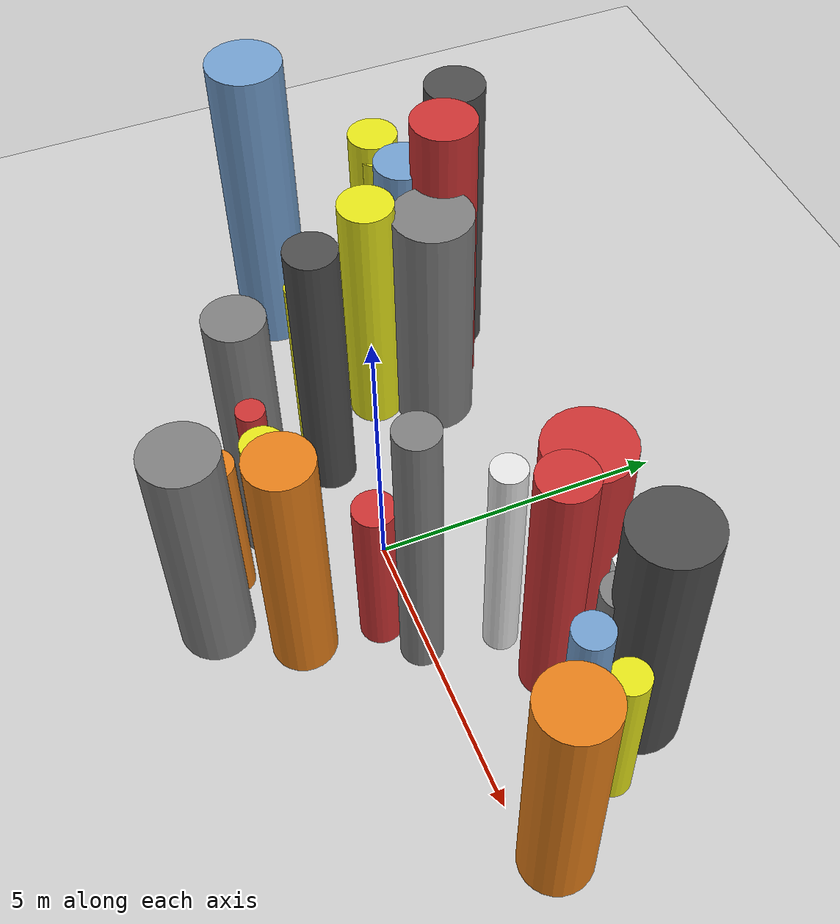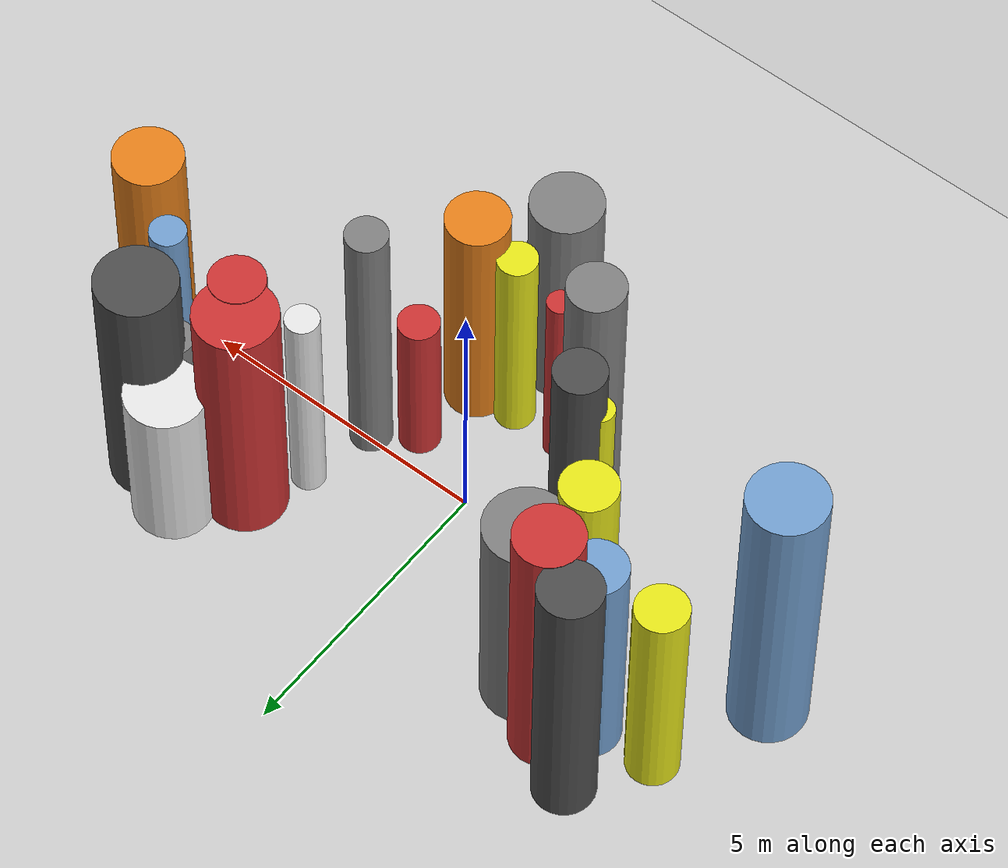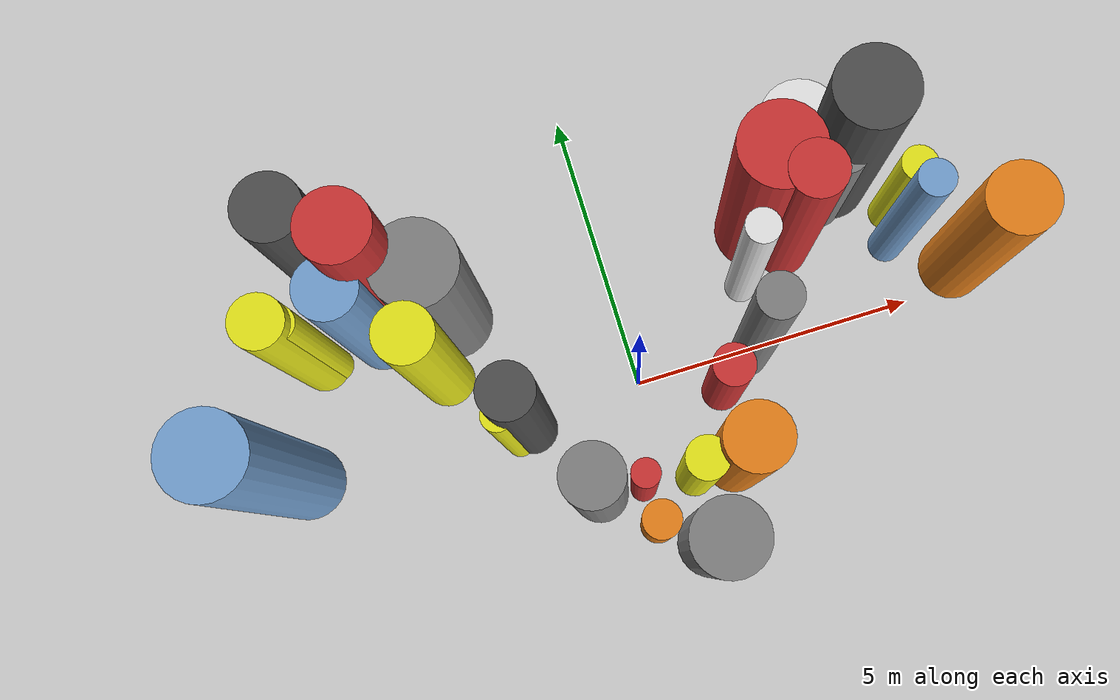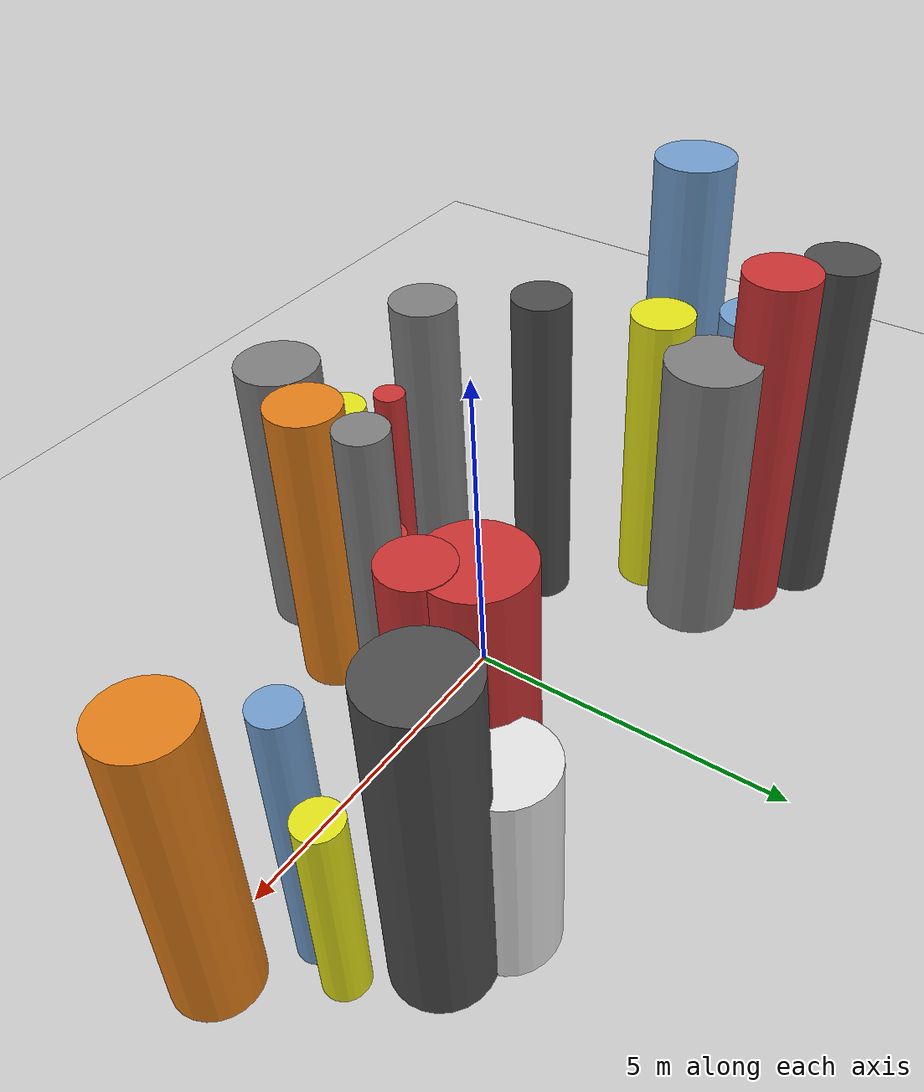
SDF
<?xml version='1.0'?>
<sdf version='1.6'>
  <world name='routeA_rl_v1__dense_recovery__rl_test__s_turn_multi_obstacle__000048'>
    <!-- Sun light -->
    <light name='sun' type='directional'>
      <cast_shadows>1</cast_shadows>
      <pose>0 0 10 0 0 0</pose>
      <diffuse>0.8 0.8 0.8 1</diffuse>
      <specular>0.2 0.2 0.2 1</specular>
      <attenuation>
        <range>1000</range>
        <constant>0.9</constant>
        <linear>0.01</linear>
        <quadratic>0.001</quadratic>
      </attenuation>
      <direction>-0.5 0.1 -0.9</direction>
    </light>

    <!-- Ground plane -->
    <model name='ground_plane'>
      <static>1</static>
      <link name='link'>
        <collision name='collision'>
          <geometry>
            <plane>
              <normal>0 0 1</normal>
              <size>100 100</size>
            </plane>
          </geometry>
          <surface>
            <contact>
              <collide_bitmask>65535</collide_bitmask>
              <ode/>
            </contact>
            <friction>
              <ode>
                <mu>100</mu>
                <mu2>50</mu2>
              </ode>
              <torsional><ode/></torsional>
            </friction>
            <bounce/>
          </surface>
          <max_contacts>10</max_contacts>
        </collision>
        <visual name='visual'>
          <cast_shadows>0</cast_shadows>
          <geometry>
            <plane>
              <normal>0 0 1</normal>
              <size>100 100</size>
            </plane>
          </geometry>
          <material>
            <script>
              <uri>file://media/materials/scripts/gazebo.material</uri>
              <n>Gazebo/Grey</n>
            </script>
          </material>
        </visual>
      </link>
    </model>

    <!-- Environment -->
    <magnetic_field>6e-06 2.3e-05 -4.2e-05</magnetic_field>
    <atmosphere type='adiabatic'/>
    <physics name='default_physics' default='0' type='ode'>
      <gravity>0 0 -9.8</gravity>
      <max_step_size>0.004</max_step_size>
      <real_time_factor>1</real_time_factor>
      <real_time_update_rate>250</real_time_update_rate>
    </physics>
    <scene>
      <ambient>0.4 0.4 0.4 1</ambient>
      <background>0.7 0.7 0.7 1</background>
      <shadows>1</shadows>
    </scene>
    <wind/>
    <spherical_coordinates>
      <surface_model>EARTH_WGS84</surface_model>
      <latitude_deg>0</latitude_deg>
      <longitude_deg>0</longitude_deg>
      <elevation>0</elevation>
      <heading_deg>0</heading_deg>
    </spherical_coordinates>

    <!-- ============ OBSTACLES (28) ============ -->
    <model name='s_turn_obs_0'>
      <static>1</static>
      <link name='link'>
        <visual name='visual'>
          <geometry>
            <cylinder>
              <radius>0.6467</radius>
              <length>5.8647</length>
            </cylinder>
          </geometry>
          <material>
            <script>
              <n>Gazebo/Blue</n>
              <uri>file://media/materials/scripts/gazebo.material</uri>
            </script>
            <ambient>0.447 0.624 0.812 1</ambient>
          </material>
        </visual>
        <collision name='collision'>
          <geometry>
            <cylinder>
              <radius>0.6467</radius>
              <length>5.8647</length>
            </cylinder>
          </geometry>
          <max_contacts>10</max_contacts>
          <surface>
            <contact><ode/></contact>
            <bounce/>
            <friction>
              <ode><mu>1</mu><mu2>1</mu2></ode>
              <torsional><ode/></torsional>
            </friction>
          </surface>
        </collision>
      </link>
      <pose>-6.0000 0.0450 2.9323 0 0 0.0000</pose>
    </model>

    <model name='s_turn_obs_1'>
      <static>1</static>
      <link name='link'>
        <visual name='visual'>
          <geometry>
            <cylinder>
              <radius>0.4315</radius>
              <length>4.4389</length>
            </cylinder>
          </geometry>
          <material>
            <script>
              <n>Gazebo/Yellow</n>
              <uri>file://media/materials/scripts/gazebo.material</uri>
            </script>
            <ambient>0.9 0.9 0.1 1</ambient>
          </material>
        </visual>
        <collision name='collision'>
          <geometry>
            <cylinder>
              <radius>0.4315</radius>
              <length>4.4389</length>
            </cylinder>
          </geometry>
          <max_contacts>10</max_contacts>
          <surface>
            <contact><ode/></contact>
            <bounce/>
            <friction>
              <ode><mu>1</mu><mu2>1</mu2></ode>
              <torsional><ode/></torsional>
            </friction>
          </surface>
        </collision>
      </link>
      <pose>-5.2000 1.9327 2.2194 0 0 0.0000</pose>
    </model>

    <model name='s_turn_obs_2'>
      <static>1</static>
      <link name='link'>
        <visual name='visual'>
          <geometry>
            <cylinder>
              <radius>0.5156</radius>
              <length>5.6516</length>
            </cylinder>
          </geometry>
          <material>
            <script>
              <n>Gazebo/DarkGrey</n>
              <uri>file://media/materials/scripts/gazebo.material</uri>
            </script>
            <ambient>0.3 0.3 0.3 1</ambient>
          </material>
        </visual>
        <collision name='collision'>
          <geometry>
            <cylinder>
              <radius>0.5156</radius>
              <length>5.6516</length>
            </cylinder>
          </geometry>
          <max_contacts>10</max_contacts>
          <surface>
            <contact><ode/></contact>
            <bounce/>
            <friction>
              <ode><mu>1</mu><mu2>1</mu2></ode>
              <torsional><ode/></torsional>
            </friction>
          </surface>
        </collision>
      </link>
      <pose>-4.4000 3.1192 2.8258 0 0 0.0000</pose>
    </model>

    <model name='s_turn_obs_3'>
      <static>1</static>
      <link name='link'>
        <visual name='visual'>
          <geometry>
            <cylinder>
              <radius>0.5625</radius>
              <length>5.6630</length>
            </cylinder>
          </geometry>
          <material>
            <script>
              <n>Gazebo/Red</n>
              <uri>file://media/materials/scripts/gazebo.material</uri>
            </script>
            <ambient>0.8 0.2 0.2 1</ambient>
          </material>
        </visual>
        <collision name='collision'>
          <geometry>
            <cylinder>
              <radius>0.5625</radius>
              <length>5.6630</length>
            </cylinder>
          </geometry>
          <max_contacts>10</max_contacts>
          <surface>
            <contact><ode/></contact>
            <bounce/>
            <friction>
              <ode><mu>1</mu><mu2>1</mu2></ode>
              <torsional><ode/></torsional>
            </friction>
          </surface>
        </collision>
      </link>
      <pose>-3.6000 2.5980 2.8315 0 0 0.0000</pose>
    </model>

    <model name='s_turn_obs_4'>
      <static>1</static>
      <link name='link'>
        <visual name='visual'>
          <geometry>
            <cylinder>
              <radius>0.6942</radius>
              <length>4.5153</length>
            </cylinder>
          </geometry>
          <material>
            <script>
              <n>Gazebo/Grey</n>
              <uri>file://media/materials/scripts/gazebo.material</uri>
            </script>
            <ambient>0.5 0.5 0.5 1</ambient>
          </material>
        </visual>
        <collision name='collision'>
          <geometry>
            <cylinder>
              <radius>0.6942</radius>
              <length>4.5153</length>
            </cylinder>
          </geometry>
          <max_contacts>10</max_contacts>
          <surface>
            <contact><ode/></contact>
            <bounce/>
            <friction>
              <ode><mu>1</mu><mu2>1</mu2></ode>
              <torsional><ode/></torsional>
            </friction>
          </surface>
        </collision>
      </link>
      <pose>-2.8000 2.0712 2.2576 0 0 0.0000</pose>
    </model>

    <model name='s_turn_obs_5'>
      <static>1</static>
      <link name='link'>
        <visual name='visual'>
          <geometry>
            <cylinder>
              <radius>0.4309</radius>
              <length>5.2096</length>
            </cylinder>
          </geometry>
          <material>
            <script>
              <n>Gazebo/DarkGrey</n>
              <uri>file://media/materials/scripts/gazebo.material</uri>
            </script>
            <ambient>0.3 0.3 0.3 1</ambient>
          </material>
        </visual>
        <collision name='collision'>
          <geometry>
            <cylinder>
              <radius>0.4309</radius>
              <length>5.2096</length>
            </cylinder>
          </geometry>
          <max_contacts>10</max_contacts>
          <surface>
            <contact><ode/></contact>
            <bounce/>
            <friction>
              <ode><mu>1</mu><mu2>1</mu2></ode>
              <torsional><ode/></torsional>
            </friction>
          </surface>
        </collision>
      </link>
      <pose>-2.0000 -0.2230 2.6048 0 0 0.0000</pose>
    </model>

    <model name='s_turn_obs_6'>
      <static>1</static>
      <link name='link'>
        <visual name='visual'>
          <geometry>
            <cylinder>
              <radius>0.4813</radius>
              <length>5.0882</length>
            </cylinder>
          </geometry>
          <material>
            <script>
              <n>Gazebo/Grey</n>
              <uri>file://media/materials/scripts/gazebo.material</uri>
            </script>
            <ambient>0.5 0.5 0.5 1</ambient>
          </material>
        </visual>
        <collision name='collision'>
          <geometry>
            <cylinder>
              <radius>0.4813</radius>
              <length>5.0882</length>
            </cylinder>
          </geometry>
          <max_contacts>10</max_contacts>
          <surface>
            <contact><ode/></contact>
            <bounce/>
            <friction>
              <ode><mu>1</mu><mu2>1</mu2></ode>
              <torsional><ode/></torsional>
            </friction>
          </surface>
        </collision>
      </link>
      <pose>-1.2000 -1.6684 2.5441 0 0 0.0000</pose>
    </model>

    <model name='s_turn_obs_7'>
      <static>1</static>
      <link name='link'>
        <visual name='visual'>
          <geometry>
            <cylinder>
              <radius>0.3124</radius>
              <length>3.0313</length>
            </cylinder>
          </geometry>
          <material>
            <script>
              <n>Gazebo/Orange</n>
              <uri>file://media/materials/scripts/gazebo.material</uri>
            </script>
            <ambient>0.9 0.5 0.1 1</ambient>
          </material>
        </visual>
        <collision name='collision'>
          <geometry>
            <cylinder>
              <radius>0.3124</radius>
              <length>3.0313</length>
            </cylinder>
          </geometry>
          <max_contacts>10</max_contacts>
          <surface>
            <contact><ode/></contact>
            <bounce/>
            <friction>
              <ode><mu>1</mu><mu2>1</mu2></ode>
              <torsional><ode/></torsional>
            </friction>
          </surface>
        </collision>
      </link>
      <pose>-0.4000 -2.4632 1.5156 0 0 0.0000</pose>
    </model>

    <model name='s_turn_obs_8'>
      <static>1</static>
      <link name='link'>
        <visual name='visual'>
          <geometry>
            <cylinder>
              <radius>0.6023</radius>
              <length>4.4514</length>
            </cylinder>
          </geometry>
          <material>
            <script>
              <n>Gazebo/Grey</n>
              <uri>file://media/materials/scripts/gazebo.material</uri>
            </script>
            <ambient>0.5 0.5 0.5 1</ambient>
          </material>
        </visual>
        <collision name='collision'>
          <geometry>
            <cylinder>
              <radius>0.6023</radius>
              <length>4.4514</length>
            </cylinder>
          </geometry>
          <max_contacts>10</max_contacts>
          <surface>
            <contact><ode/></contact>
            <bounce/>
            <friction>
              <ode><mu>1</mu><mu2>1</mu2></ode>
              <torsional><ode/></torsional>
            </friction>
          </surface>
        </collision>
      </link>
      <pose>0.4000 -3.0222 2.2257 0 0 0.0000</pose>
    </model>

    <model name='s_turn_obs_9'>
      <static>1</static>
      <link name='link'>
        <visual name='visual'>
          <geometry>
            <cylinder>
              <radius>0.5290</radius>
              <length>4.6493</length>
            </cylinder>
          </geometry>
          <material>
            <script>
              <n>Gazebo/Orange</n>
              <uri>file://media/materials/scripts/gazebo.material</uri>
            </script>
            <ambient>0.9 0.5 0.1 1</ambient>
          </material>
        </visual>
        <collision name='collision'>
          <geometry>
            <cylinder>
              <radius>0.5290</radius>
              <length>4.6493</length>
            </cylinder>
          </geometry>
          <max_contacts>10</max_contacts>
          <surface>
            <contact><ode/></contact>
            <bounce/>
            <friction>
              <ode><mu>1</mu><mu2>1</mu2></ode>
              <torsional><ode/></torsional>
            </friction>
          </surface>
        </collision>
      </link>
      <pose>1.2000 -1.8117 2.3246 0 0 0.0000</pose>
    </model>

    <model name='s_turn_obs_10'>
      <static>1</static>
      <link name='link'>
        <visual name='visual'>
          <geometry>
            <cylinder>
              <radius>0.3495</radius>
              <length>5.3812</length>
            </cylinder>
          </geometry>
          <material>
            <script>
              <n>Gazebo/Grey</n>
              <uri>file://media/materials/scripts/gazebo.material</uri>
            </script>
            <ambient>0.5 0.5 0.5 1</ambient>
          </material>
        </visual>
        <collision name='collision'>
          <geometry>
            <cylinder>
              <radius>0.3495</radius>
              <length>5.3812</length>
            </cylinder>
          </geometry>
          <max_contacts>10</max_contacts>
          <surface>
            <contact><ode/></contact>
            <bounce/>
            <friction>
              <ode><mu>1</mu><mu2>1</mu2></ode>
              <torsional><ode/></torsional>
            </friction>
          </surface>
        </collision>
      </link>
      <pose>2.0000 -0.1018 2.6906 0 0 0.0000</pose>
    </model>

    <model name='s_turn_obs_11'>
      <static>1</static>
      <link name='link'>
        <visual name='visual'>
          <geometry>
            <cylinder>
              <radius>0.6840</radius>
              <length>4.9861</length>
            </cylinder>
          </geometry>
          <material>
            <script>
              <n>Gazebo/Red</n>
              <uri>file://media/materials/scripts/gazebo.material</uri>
            </script>
            <ambient>0.8 0.2 0.2 1</ambient>
          </material>
        </visual>
        <collision name='collision'>
          <geometry>
            <cylinder>
              <radius>0.6840</radius>
              <length>4.9861</length>
            </cylinder>
          </geometry>
          <max_contacts>10</max_contacts>
          <surface>
            <contact><ode/></contact>
            <bounce/>
            <friction>
              <ode><mu>1</mu><mu2>1</mu2></ode>
              <torsional><ode/></torsional>
            </friction>
          </surface>
        </collision>
      </link>
      <pose>2.8000 2.0577 2.4931 0 0 0.0000</pose>
    </model>

    <model name='s_turn_obs_12'>
      <static>1</static>
      <link name='link'>
        <visual name='visual'>
          <geometry>
            <cylinder>
              <radius>0.6680</radius>
              <length>3.1137</length>
            </cylinder>
          </geometry>
          <material>
            <script>
              <n>Gazebo/White</n>
              <uri>file://media/materials/scripts/gazebo.material</uri>
            </script>
            <ambient>0.9 0.9 0.9 1</ambient>
          </material>
        </visual>
        <collision name='collision'>
          <geometry>
            <cylinder>
              <radius>0.6680</radius>
              <length>3.1137</length>
            </cylinder>
          </geometry>
          <max_contacts>10</max_contacts>
          <surface>
            <contact><ode/></contact>
            <bounce/>
            <friction>
              <ode><mu>1</mu><mu2>1</mu2></ode>
              <torsional><ode/></torsional>
            </friction>
          </surface>
        </collision>
      </link>
      <pose>3.6000 2.8931 1.5569 0 0 0.0000</pose>
    </model>

    <model name='s_turn_obs_13'>
      <static>1</static>
      <link name='link'>
        <visual name='visual'>
          <geometry>
            <cylinder>
              <radius>0.6736</radius>
              <length>4.9242</length>
            </cylinder>
          </geometry>
          <material>
            <script>
              <n>Gazebo/DarkGrey</n>
              <uri>file://media/materials/scripts/gazebo.material</uri>
            </script>
            <ambient>0.3 0.3 0.3 1</ambient>
          </material>
        </visual>
        <collision name='collision'>
          <geometry>
            <cylinder>
              <radius>0.6736</radius>
              <length>4.9242</length>
            </cylinder>
          </geometry>
          <max_contacts>10</max_contacts>
          <surface>
            <contact><ode/></contact>
            <bounce/>
            <friction>
              <ode><mu>1</mu><mu2>1</mu2></ode>
              <torsional><ode/></torsional>
            </friction>
          </surface>
        </collision>
      </link>
      <pose>4.4000 2.4979 2.4621 0 0 0.0000</pose>
    </model>

    <model name='s_turn_obs_14'>
      <static>1</static>
      <link name='link'>
        <visual name='visual'>
          <geometry>
            <cylinder>
              <radius>0.3042</radius>
              <length>3.0080</length>
            </cylinder>
          </geometry>
          <material>
            <script>
              <n>Gazebo/Yellow</n>
              <uri>file://media/materials/scripts/gazebo.material</uri>
            </script>
            <ambient>0.9 0.9 0.1 1</ambient>
          </material>
        </visual>
        <collision name='collision'>
          <geometry>
            <cylinder>
              <radius>0.3042</radius>
              <length>3.0080</length>
            </cylinder>
          </geometry>
          <max_contacts>10</max_contacts>
          <surface>
            <contact><ode/></contact>
            <bounce/>
            <friction>
              <ode><mu>1</mu><mu2>1</mu2></ode>
              <torsional><ode/></torsional>
            </friction>
          </surface>
        </collision>
      </link>
      <pose>5.2000 1.6612 1.5040 0 0 0.0000</pose>
    </model>

    <model name='s_turn_obs_15'>
      <static>1</static>
      <link name='link'>
        <visual name='visual'>
          <geometry>
            <cylinder>
              <radius>0.5792</radius>
              <length>4.5330</length>
            </cylinder>
          </geometry>
          <material>
            <script>
              <n>Gazebo/Orange</n>
              <uri>file://media/materials/scripts/gazebo.material</uri>
            </script>
            <ambient>0.9 0.5 0.1 1</ambient>
          </material>
        </visual>
        <collision name='collision'>
          <geometry>
            <cylinder>
              <radius>0.5792</radius>
              <length>4.5330</length>
            </cylinder>
          </geometry>
          <max_contacts>10</max_contacts>
          <surface>
            <contact><ode/></contact>
            <bounce/>
            <friction>
              <ode><mu>1</mu><mu2>1</mu2></ode>
              <torsional><ode/></torsional>
            </friction>
          </surface>
        </collision>
      </link>
      <pose>6.0000 0.3653 2.2665 0 0 0.0000</pose>
    </model>

    <model name='s_turn_obs2_0'>
      <static>1</static>
      <link name='link'>
        <visual name='visual'>
          <geometry>
            <cylinder>
              <radius>0.2936</radius>
              <length>4.1265</length>
            </cylinder>
          </geometry>
          <material>
            <script>
              <n>Gazebo/Yellow</n>
              <uri>file://media/materials/scripts/gazebo.material</uri>
            </script>
            <ambient>0.9 0.9 0.1 1</ambient>
          </material>
        </visual>
        <collision name='collision'>
          <geometry>
            <cylinder>
              <radius>0.2936</radius>
              <length>4.1265</length>
            </cylinder>
          </geometry>
          <max_contacts>10</max_contacts>
          <surface>
            <contact><ode/></contact>
            <bounce/>
            <friction>
              <ode><mu>1</mu><mu2>1</mu2></ode>
              <torsional><ode/></torsional>
            </friction>
          </surface>
        </collision>
      </link>
      <pose>-5.0000 1.8993 2.0632 0 0 0.0000</pose>
    </model>

    <model name='s_turn_obs2_1'>
      <static>1</static>
      <link name='link'>
        <visual name='visual'>
          <geometry>
            <cylinder>
              <radius>0.4994</radius>
              <length>4.6337</length>
            </cylinder>
          </geometry>
          <material>
            <script>
              <n>Gazebo/Blue</n>
              <uri>file://media/materials/scripts/gazebo.material</uri>
            </script>
            <ambient>0.447 0.624 0.812 1</ambient>
          </material>
        </visual>
        <collision name='collision'>
          <geometry>
            <cylinder>
              <radius>0.4994</radius>
              <length>4.6337</length>
            </cylinder>
          </geometry>
          <max_contacts>10</max_contacts>
          <surface>
            <contact><ode/></contact>
            <bounce/>
            <friction>
              <ode><mu>1</mu><mu2>1</mu2></ode>
              <torsional><ode/></torsional>
            </friction>
          </surface>
        </collision>
      </link>
      <pose>-4.0909 2.0624 2.3168 0 0 0.0000</pose>
    </model>

    <model name='s_turn_obs2_2'>
      <static>1</static>
      <link name='link'>
        <visual name='visual'>
          <geometry>
            <cylinder>
              <radius>0.4708</radius>
              <length>4.7593</length>
            </cylinder>
          </geometry>
          <material>
            <script>
              <n>Gazebo/Yellow</n>
              <uri>file://media/materials/scripts/gazebo.material</uri>
            </script>
            <ambient>0.9 0.9 0.1 1</ambient>
          </material>
        </visual>
        <collision name='collision'>
          <geometry>
            <cylinder>
              <radius>0.4708</radius>
              <length>4.7593</length>
            </cylinder>
          </geometry>
          <max_contacts>10</max_contacts>
          <surface>
            <contact><ode/></contact>
            <bounce/>
            <friction>
              <ode><mu>1</mu><mu2>1</mu2></ode>
              <torsional><ode/></torsional>
            </friction>
          </surface>
        </collision>
      </link>
      <pose>-3.1818 1.0700 2.3796 0 0 0.0000</pose>
    </model>

    <model name='s_turn_obs2_3'>
      <static>1</static>
      <link name='link'>
        <visual name='visual'>
          <geometry>
            <cylinder>
              <radius>0.2451</radius>
              <length>4.2723</length>
            </cylinder>
          </geometry>
          <material>
            <script>
              <n>Gazebo/Yellow</n>
              <uri>file://media/materials/scripts/gazebo.material</uri>
            </script>
            <ambient>0.9 0.9 0.1 1</ambient>
          </material>
        </visual>
        <collision name='collision'>
          <geometry>
            <cylinder>
              <radius>0.2451</radius>
              <length>4.2723</length>
            </cylinder>
          </geometry>
          <max_contacts>10</max_contacts>
          <surface>
            <contact><ode/></contact>
            <bounce/>
            <friction>
              <ode><mu>1</mu><mu2>1</mu2></ode>
              <torsional><ode/></torsional>
            </friction>
          </surface>
        </collision>
      </link>
      <pose>-2.2727 -0.3839 2.1361 0 0 0.0000</pose>
    </model>

    <model name='s_turn_obs2_4'>
      <static>1</static>
      <link name='link'>
        <visual name='visual'>
          <geometry>
            <cylinder>
              <radius>0.2010</radius>
              <length>4.1828</length>
            </cylinder>
          </geometry>
          <material>
            <script>
              <n>Gazebo/DarkGrey</n>
              <uri>file://media/materials/scripts/gazebo.material</uri>
            </script>
            <ambient>0.3 0.3 0.3 1</ambient>
          </material>
        </visual>
        <collision name='collision'>
          <geometry>
            <cylinder>
              <radius>0.2010</radius>
              <length>4.1828</length>
            </cylinder>
          </geometry>
          <max_contacts>10</max_contacts>
          <surface>
            <contact><ode/></contact>
            <bounce/>
            <friction>
              <ode><mu>1</mu><mu2>1</mu2></ode>
              <torsional><ode/></torsional>
            </friction>
          </surface>
        </collision>
      </link>
      <pose>-1.3636 -1.4919 2.0914 0 0 0.0000</pose>
    </model>

    <model name='s_turn_obs2_5'>
      <static>1</static>
      <link name='link'>
        <visual name='visual'>
          <geometry>
            <cylinder>
              <radius>0.2274</radius>
              <length>3.9223</length>
            </cylinder>
          </geometry>
          <material>
            <script>
              <n>Gazebo/Red</n>
              <uri>file://media/materials/scripts/gazebo.material</uri>
            </script>
            <ambient>0.8 0.2 0.2 1</ambient>
          </material>
        </visual>
        <collision name='collision'>
          <geometry>
            <cylinder>
              <radius>0.2274</radius>
              <length>3.9223</length>
            </cylinder>
          </geometry>
          <max_contacts>10</max_contacts>
          <surface>
            <contact><ode/></contact>
            <bounce/>
            <friction>
              <ode><mu>1</mu><mu2>1</mu2></ode>
              <torsional><ode/></torsional>
            </friction>
          </surface>
        </collision>
      </link>
      <pose>-0.4545 -1.7823 1.9611 0 0 0.0000</pose>
    </model>

    <model name='s_turn_obs2_6'>
      <static>1</static>
      <link name='link'>
        <visual name='visual'>
          <geometry>
            <cylinder>
              <radius>0.3356</radius>
              <length>4.1973</length>
            </cylinder>
          </geometry>
          <material>
            <script>
              <n>Gazebo/Yellow</n>
              <uri>file://media/materials/scripts/gazebo.material</uri>
            </script>
            <ambient>0.9 0.9 0.1 1</ambient>
          </material>
        </visual>
        <collision name='collision'>
          <geometry>
            <cylinder>
              <radius>0.3356</radius>
              <length>4.1973</length>
            </cylinder>
          </geometry>
          <max_contacts>10</max_contacts>
          <surface>
            <contact><ode/></contact>
            <bounce/>
            <friction>
              <ode><mu>1</mu><mu2>1</mu2></ode>
              <torsional><ode/></torsional>
            </friction>
          </surface>
        </collision>
      </link>
      <pose>0.4545 -1.8543 2.0987 0 0 0.0000</pose>
    </model>

    <model name='s_turn_obs2_7'>
      <static>1</static>
      <link name='link'>
        <visual name='visual'>
          <geometry>
            <cylinder>
              <radius>0.3453</radius>
              <length>3.1417</length>
            </cylinder>
          </geometry>
          <material>
            <script>
              <n>Gazebo/Red</n>
              <uri>file://media/materials/scripts/gazebo.material</uri>
            </script>
            <ambient>0.8 0.2 0.2 1</ambient>
          </material>
        </visual>
        <collision name='collision'>
          <geometry>
            <cylinder>
              <radius>0.3453</radius>
              <length>3.1417</length>
            </cylinder>
          </geometry>
          <max_contacts>10</max_contacts>
          <surface>
            <contact><ode/></contact>
            <bounce/>
            <friction>
              <ode><mu>1</mu><mu2>1</mu2></ode>
              <torsional><ode/></torsional>
            </friction>
          </surface>
        </collision>
      </link>
      <pose>1.3636 -0.5557 1.5709 0 0 0.0000</pose>
    </model>

    <model name='s_turn_obs2_8'>
      <static>1</static>
      <link name='link'>
        <visual name='visual'>
          <geometry>
            <cylinder>
              <radius>0.2822</radius>
              <length>4.3065</length>
            </cylinder>
          </geometry>
          <material>
            <script>
              <n>Gazebo/White</n>
              <uri>file://media/materials/scripts/gazebo.material</uri>
            </script>
            <ambient>0.9 0.9 0.9 1</ambient>
          </material>
        </visual>
        <collision name='collision'>
          <geometry>
            <cylinder>
              <radius>0.2822</radius>
              <length>4.3065</length>
            </cylinder>
          </geometry>
          <max_contacts>10</max_contacts>
          <surface>
            <contact><ode/></contact>
            <bounce/>
            <friction>
              <ode><mu>1</mu><mu2>1</mu2></ode>
              <torsional><ode/></torsional>
            </friction>
          </surface>
        </collision>
      </link>
      <pose>2.2727 1.1433 2.1532 0 0 0.0000</pose>
    </model>

    <model name='s_turn_obs2_9'>
      <static>1</static>
      <link name='link'>
        <visual name='visual'>
          <geometry>
            <cylinder>
              <radius>0.4598</radius>
              <length>4.9992</length>
            </cylinder>
          </geometry>
          <material>
            <script>
              <n>Gazebo/Red</n>
              <uri>file://media/materials/scripts/gazebo.material</uri>
            </script>
            <ambient>0.8 0.2 0.2 1</ambient>
          </material>
        </visual>
        <collision name='collision'>
          <geometry>
            <cylinder>
              <radius>0.4598</radius>
              <length>4.9992</length>
            </cylinder>
          </geometry>
          <max_contacts>10</max_contacts>
          <surface>
            <contact><ode/></contact>
            <bounce/>
            <friction>
              <ode><mu>1</mu><mu2>1</mu2></ode>
              <torsional><ode/></torsional>
            </friction>
          </surface>
        </collision>
      </link>
      <pose>3.1818 1.5577 2.4996 0 0 0.0000</pose>
    </model>

    <model name='s_turn_obs2_10'>
      <static>1</static>
      <link name='link'>
        <visual name='visual'>
          <geometry>
            <cylinder>
              <radius>0.3417</radius>
              <length>3.2797</length>
            </cylinder>
          </geometry>
          <material>
            <script>
              <n>Gazebo/Grey</n>
              <uri>file://media/materials/scripts/gazebo.material</uri>
            </script>
            <ambient>0.5 0.5 0.5 1</ambient>
          </material>
        </visual>
        <collision name='collision'>
          <geometry>
            <cylinder>
              <radius>0.3417</radius>
              <length>3.2797</length>
            </cylinder>
          </geometry>
          <max_contacts>10</max_contacts>
          <surface>
            <contact><ode/></contact>
            <bounce/>
            <friction>
              <ode><mu>1</mu><mu2>1</mu2></ode>
              <torsional><ode/></torsional>
            </friction>
          </surface>
        </collision>
      </link>
      <pose>4.0909 2.0953 1.6399 0 0 0.0000</pose>
    </model>

    <model name='s_turn_obs2_11'>
      <static>1</static>
      <link name='link'>
        <visual name='visual'>
          <geometry>
            <cylinder>
              <radius>0.3032</radius>
              <length>4.2075</length>
            </cylinder>
          </geometry>
          <material>
            <script>
              <n>Gazebo/Blue</n>
              <uri>file://media/materials/scripts/gazebo.material</uri>
            </script>
            <ambient>0.447 0.624 0.812 1</ambient>
          </material>
        </visual>
        <collision name='collision'>
          <geometry>
            <cylinder>
              <radius>0.3032</radius>
              <length>4.2075</length>
            </cylinder>
          </geometry>
          <max_contacts>10</max_contacts>
          <surface>
            <contact><ode/></contact>
            <bounce/>
            <friction>
              <ode><mu>1</mu><mu2>1</mu2></ode>
              <torsional><ode/></torsional>
            </friction>
          </surface>
        </collision>
      </link>
      <pose>5.0000 1.0951 2.1038 0 0 0.0000</pose>
    </model>

    <!-- GUI camera -->
    <gui fullscreen='0'>
      <camera name='user_camera'>
        <pose>-15 0 18 0 0.85 0.15</pose>
        <view_controller>orbit</view_controller>
        <projection_type>perspective</projection_type>
      </camera>
    </gui>
  </world>
</sdf>
